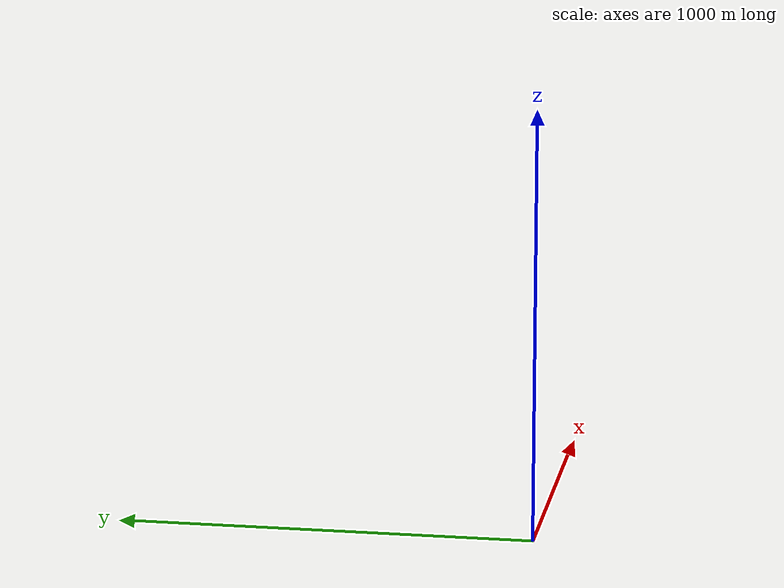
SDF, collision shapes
<?xml version="1.0" ?>
<sdf version="1.6">
  <model name="blueboat_chassis">
    <link name="blueboat_chassis">
      <visual name="blueboat_chassis">
        <geometry>
          <mesh>
            <uri>blueboat_chassis.visual.glb</uri>
          </mesh>
        </geometry>
      </visual>
      <collision name="blueboat_chassis_collider_box">
        <pose>-0.104158 -0.295896 -0.043697 0.0 0.0 0.0</pose>
        <geometry>
          <box>
            <size>0.696765 0.018217 0.370259</size>
          </box>
        </geometry>
      </collision>
      <collision name="blueboat_chassis_collider_box_2">
        <pose>-0.012113 -0.363698 0.083833 0.0 0.0 0.0</pose>
        <geometry>
          <box>
            <size>0.872756 0.125557 0.116921</size>
          </box>
        </geometry>
      </collision>
      <collision name="blueboat_chassis_collider_cylinder">
        <pose>-0.017902 -0.360024 0.01984 0.0 0.0 0.0</pose>
        <geometry>
          <cylinder>
            <radius>0.411411</radius>
            <length>0.135532</length>
          </cylinder>
        </geometry>
      </collision>
      <collision name="blueboat_chassis_collider_box_6">
        <pose>-0.522288 -0.295896 -0.211583 0.0 0.0 0.0</pose>
        <geometry>
          <box>
            <size>0.150178 0.018217 0.034487</size>
          </box>
        </geometry>
      </collision>
      <collision name="blueboat_chassis_collider_cylinder_1">
        <pose>-0.033923 -0.323371 -0.052308 0.0 0.0 0.0</pose>
        <geometry>
          <cylinder>
            <radius>0.421063</radius>
            <length>0.056977</length>
          </cylinder>
        </geometry>
      </collision>
      <collision name="blueboat_chassis_collider_box_4">
        <pose>-0.467242 -0.314934 0.038698 0.0 0.0 0.0</pose>
        <geometry>
          <box>
            <size>0.127101 0.074541 0.20022</size>
          </box>
        </geometry>
      </collision>
      <collision name="blueboat_chassis_collider_box_8">
        <pose>0.488345 -0.302387 0.086141 0.0 0.0 0.0</pose>
        <geometry>
          <box>
            <size>0.197621 0.049447 0.105333</size>
          </box>
        </geometry>
      </collision>
      <collision name="blueboat_chassis_collider_cylinder_2">
        <pose>0.406722 -0.321877 0.030426 0.0 0.0 0.0</pose>
        <geometry>
          <cylinder>
            <radius>0.111828</radius>
            <length>0.223656</length>
          </cylinder>
        </geometry>
      </collision>
      <collision name="blueboat_chassis_collider_cylinder_3">
        <pose>0.283564 -0.295886 -0.045978 0.0 0.0 0.0</pose>
        <geometry>
          <cylinder>
            <radius>0.132203</radius>
            <length>0.264407</length>
          </cylinder>
        </geometry>
      </collision>
      <collision name="blueboat_chassis_collider_cylinder_4">
        <pose>-0.447734 -0.30143 -0.126513 0.0 0.0 0.0</pose>
        <geometry>
          <cylinder>
            <radius>0.040196</radius>
            <length>0.040861</length>
          </cylinder>
        </geometry>
      </collision>
      <collision name="blueboat_chassis_collider_box_1">
        <pose>0.488345 0.302388 0.086141 0.0 0.0 0.0</pose>
        <geometry>
          <box>
            <size>0.197621 0.049447 0.105333</size>
          </box>
        </geometry>
      </collision>
      <collision name="blueboat_chassis_collider_cylinder_5">
        <pose>0.406722 0.321876 0.030426 0.0 0.0 0.0</pose>
        <geometry>
          <cylinder>
            <radius>0.111828</radius>
            <length>0.223656</length>
          </cylinder>
        </geometry>
      </collision>
      <collision name="blueboat_chassis_collider_cylinder_6">
        <pose>-0.017902 0.360024 0.01984 0.0 0.0 0.0</pose>
        <geometry>
          <cylinder>
            <radius>0.411411</radius>
            <length>0.135532</length>
          </cylinder>
        </geometry>
      </collision>
      <collision name="blueboat_chassis_collider_box_3">
        <pose>-0.012113 0.363698 0.083833 0.0 0.0 0.0</pose>
        <geometry>
          <box>
            <size>0.872756 0.125557 0.116921</size>
          </box>
        </geometry>
      </collision>
      <collision name="blueboat_chassis_collider_cylinder_7">
        <pose>0.283564 0.295886 -0.045978 0.0 0.0 0.0</pose>
        <geometry>
          <cylinder>
            <radius>0.132203</radius>
            <length>0.264407</length>
          </cylinder>
        </geometry>
      </collision>
      <collision name="blueboat_chassis_collider_box_5">
        <pose>-0.104158 0.295896 -0.043697 0.0 0.0 0.0</pose>
        <geometry>
          <box>
            <size>0.696765 0.018217 0.370259</size>
          </box>
        </geometry>
      </collision>
      <collision name="blueboat_chassis_collider_cylinder_8">
        <pose>-0.447734 0.30143 -0.126513 0.0 0.0 0.0</pose>
        <geometry>
          <cylinder>
            <radius>0.040196</radius>
            <length>0.040861</length>
          </cylinder>
        </geometry>
      </collision>
      <collision name="blueboat_chassis_collider_box_7">
        <pose>0.299059 -0.0 0.142501 0.0 0.0 0.0</pose>
        <geometry>
          <box>
            <size>0.0257 0.500356 0.037959</size>
          </box>
        </geometry>
      </collision>
      <collision name="blueboat_chassis_collider_box_9">
        <pose>-0.300152 0.0 0.142501 0.0 0.0 0.0</pose>
        <geometry>
          <box>
            <size>0.0257 0.500356 0.037959</size>
          </box>
        </geometry>
      </collision>
      <collision name="blueboat_chassis_collider_box.010">
        <pose>0.298121 -0.317568 0.130778 0.0 0.0 0.0</pose>
        <geometry>
          <box>
            <size>0.043582 0.183315 0.063965</size>
          </box>
        </geometry>
      </collision>
      <collision name="blueboat_chassis_collider_box.011">
        <pose>-0.29897 -0.317568 0.130778 0.0 0.0 0.0</pose>
        <geometry>
          <box>
            <size>0.043582 0.183315 0.063965</size>
          </box>
        </geometry>
      </collision>
      <collision name="blueboat_chassis_collider_box.012">
        <pose>-0.29897 0.317568 0.130778 0.0 0.0 0.0</pose>
        <geometry>
          <box>
            <size>0.043582 0.183315 0.063965</size>
          </box>
        </geometry>
      </collision>
      <collision name="blueboat_chassis_collider_box.013">
        <pose>0.298121 0.317568 0.130778 0.0 0.0 0.0</pose>
        <geometry>
          <box>
            <size>0.043582 0.183315 0.063965</size>
          </box>
        </geometry>
      </collision>
      <collision name="blueboat_chassis_collider_cylinder_9">
        <pose>-0.253322 -0_144 0.117093 0.0 0.0 0.0</pose>
        <geometry>
          <cylinder>
            <radius>0.016745</radius>
            <length>0.03349</length>
          </cylinder>
        </geometry>
      </collision>
      <collision name="blueboat_chassis_collider_box.014">
        <pose>0_3337 -0.36614 0.160429 0.0 0.0 0.0</pose>
        <geometry>
          <box>
            <size>0.415567 0.151904 0.045952</size>
          </box>
        </geometry>
      </collision>
      <collision name="blueboat_chassis_collider_box.015">
        <pose>0_3337 0.36614 0.160429 0.0 0.0 0.0</pose>
        <geometry>
          <box>
            <size>0.415567 0.151904 0.045952</size>
          </box>
        </geometry>
      </collision>
      <collision name="blueboat_chassis_collider_box.016">
        <pose>-0.467242 0.314935 0.038698 0.0 0.0 0.0</pose>
        <geometry>
          <box>
            <size>0.127101 0.074541 0.20022</size>
          </box>
        </geometry>
      </collision>
      <collision name="blueboat_chassis_collider_box.017">
        <pose>-0.522288 0.295896 -0.211583 0.0 0.0 0.0</pose>
        <geometry>
          <box>
            <size>0.150178 0.018217 0.034487</size>
          </box>
        </geometry>
      </collision>
    </link>
  </model>
</sdf>
